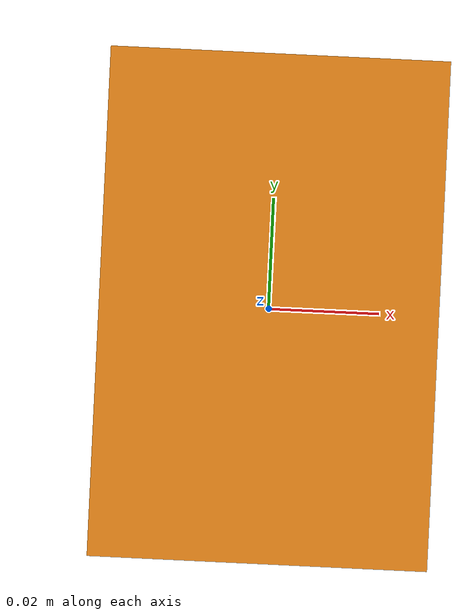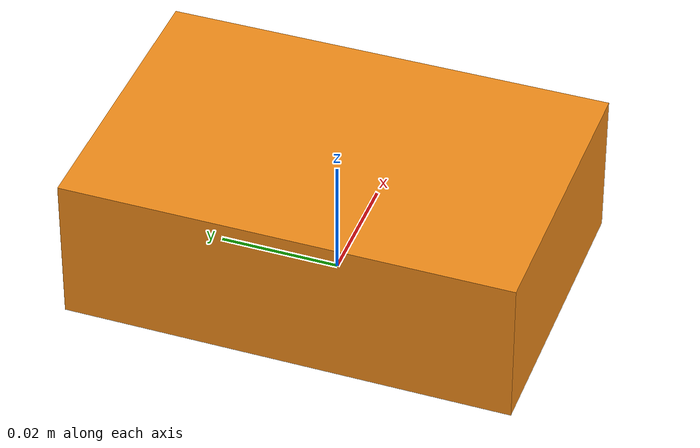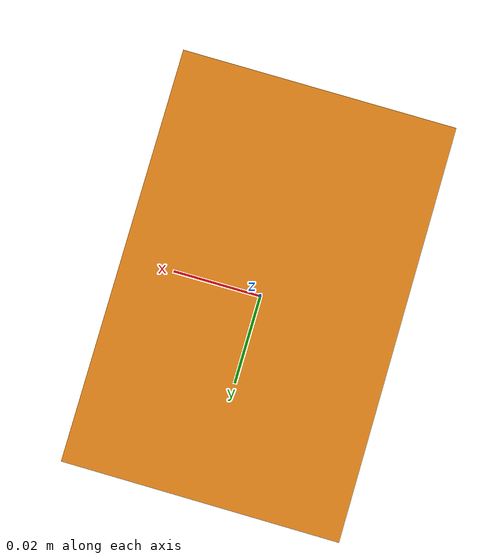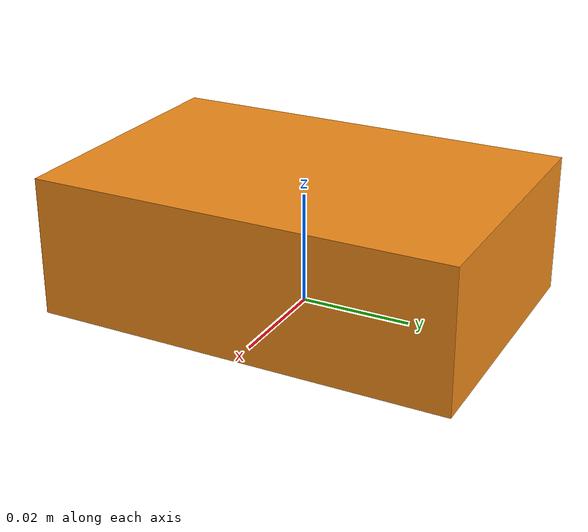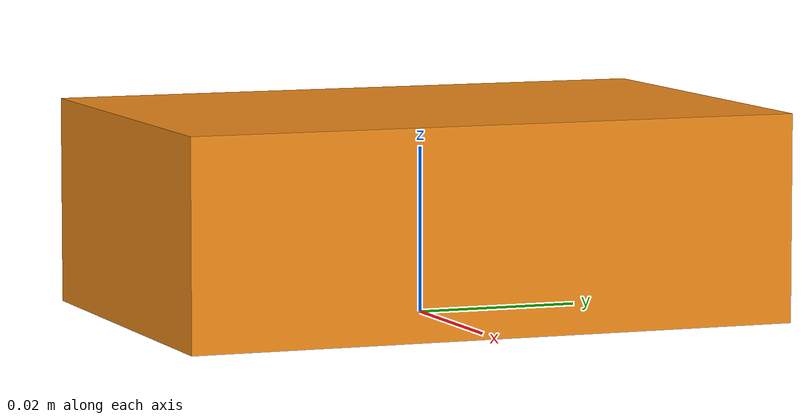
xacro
<?xml version = "1.0"?>
<robot xmlns:xacro="http://www.ros.org/wiki/xacro" name="my_robot">

    <link name="lidar">
        <visual>
            <!-- Løft boksen litt opp slik at rotasjon skjer i bunn av boksen. -->
            <origin xyz="0 0 0.0125" rpy="0 0 0"/>
            <geometry>
                <!-- Skalert kopi av kropp-boksen (0.2 0.3 0.1) i 1/4 størrelse. -->
                <box size="0.05 0.075 0.025"/>
            </geometry>
            <material name="orange"/>
        </visual>
        <collision>
            <origin xyz="0 0 0.0125" rpy="0 0 0"/>
            <geometry>
                <box size="0.05 0.075 0.025"/>
            </geometry>
        </collision>
        <xacro:inertial_box mass="0.1" x="0.05" y="0.075" z="0.025">
            <origin xyz="0 0 0.0125" rpy="0 0 0"/>
        </xacro:inertial_box>
    </link>

    <gazebo reference="lidar">
        <material>Gazebo/Orange</material>
    </gazebo>

</robot>
